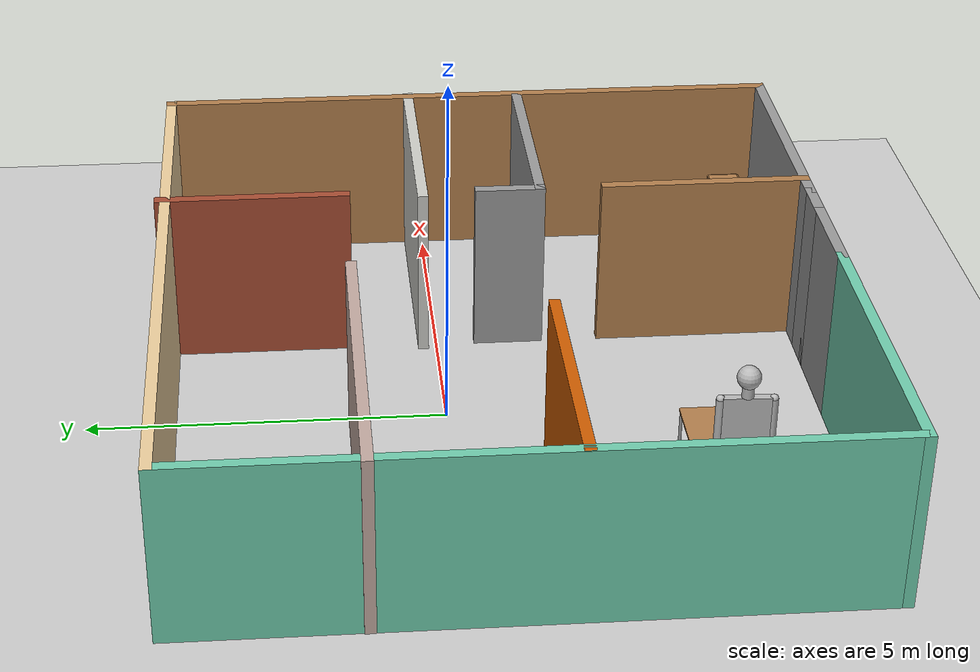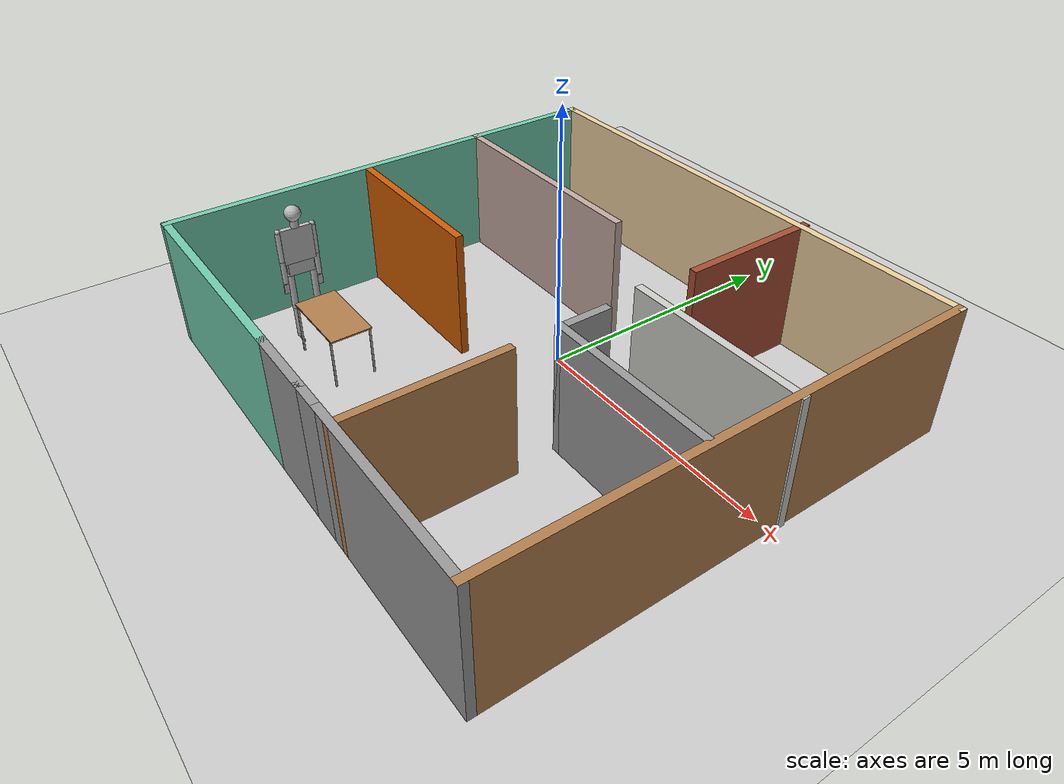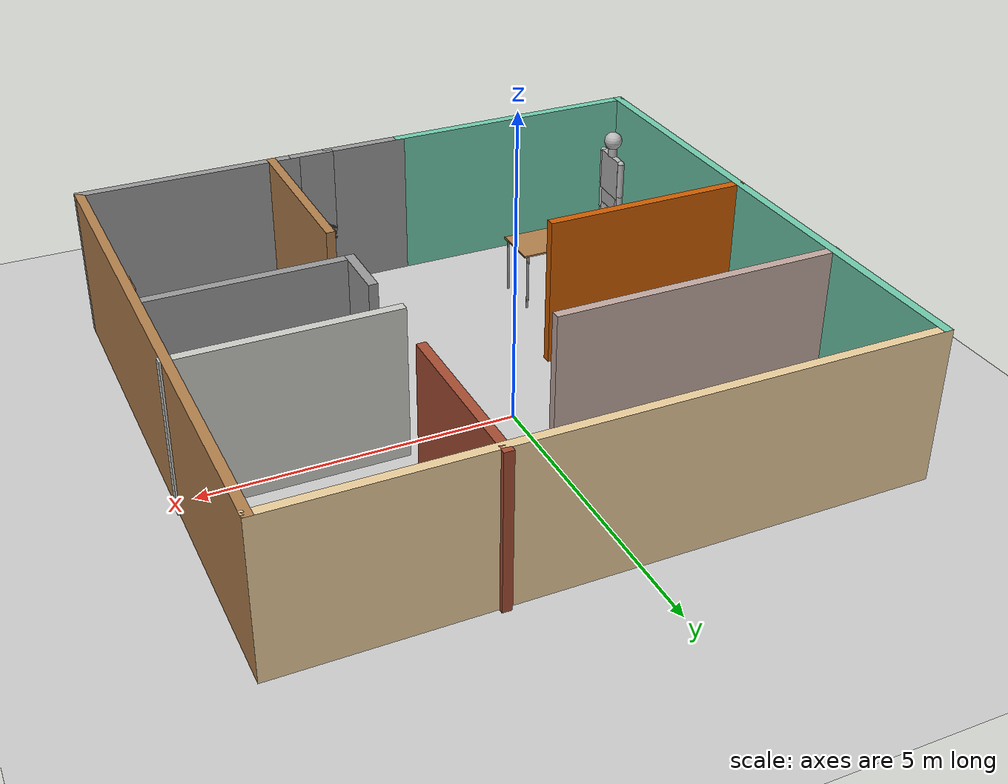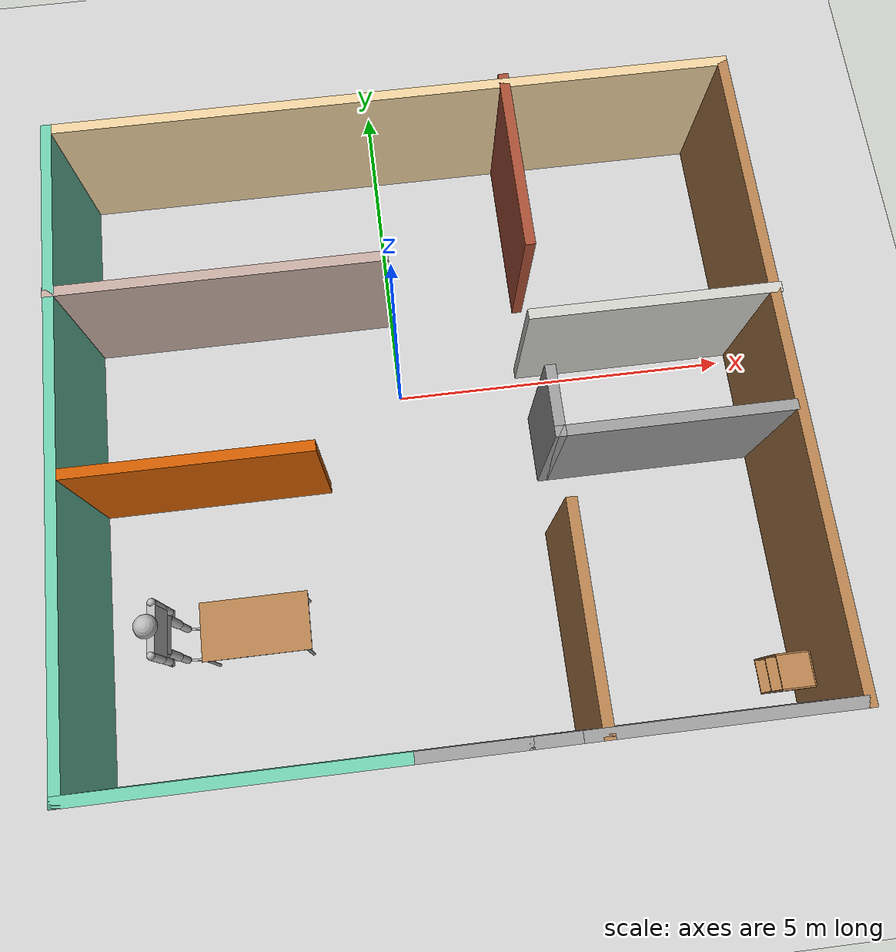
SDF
<sdf version="1.6">
 <world name="default">
  <light name="sun" type="directional">
   <pose>0 0 10 0 -0 0</pose>
   <diffuse>0.8 0.8 0.8 1</diffuse>
   <specular>0.2 0.2 0.2 1</specular>
   <attenuation>
    <range>1000</range>
    <constant>0.9</constant>
    <linear>0.01</linear>
    <quadratic>0.001</quadratic>
   </attenuation>
   <direction>-0.5 0.1 -0.9</direction>
  </light>
  <model name="ground_plane">
   <static>1</static>
   <link name="link">
    <collision name="collision">
     <geometry><plane><normal>0 0 1</normal><size>100 100</size></plane></geometry>
     <surface><friction><ode><mu>100</mu><mu2>50</mu2></ode></friction></surface>
    </collision>
    <visual name="visual">
     <cast_shadows>0</cast_shadows>
     <geometry><plane><normal>0 0 1</normal><size>100 100</size></plane></geometry>
     <material>
      <script><uri>file://media/materials/scripts/gazebo.material</uri><name>Gazebo/Grey</name></script>
     </material>
    </visual>
   </link>
  </model>
  <gravity>0 0 -9.8</gravity>
  <magnetic_field>6e-06 2.3e-05 -4.2e-05</magnetic_field>
  <atmosphere type="adiabatic"/>
  <physics name="default_physics" default="0" type="ode">
   <max_step_size>0.001</max_step_size>
   <real_time_factor>1</real_time_factor>
   <real_time_update_rate>1000</real_time_update_rate>
  </physics>
  <scene><ambient>0.4 0.4 0.4 1</ambient><background>0.7 0.7 0.7 1</background><shadows>1</shadows></scene>
  <spherical_coordinates>
   <surface_model>EARTH_WGS84</surface_model>
   <latitude_deg>0</latitude_deg>
   <longitude_deg>0</longitude_deg>
   <elevation>0</elevation>
   <heading_deg>0</heading_deg>
  </spherical_coordinates>
  <model name="world2">
   <pose>0.293367 -0.68691 0 0 -0 0</pose>
   <link name="Wall_0">
    <collision name="Wall_0_Collision">
     <geometry><box><size>4.5 0.15 2.5</size></box></geometry>
     <pose>0 0 1.25 0 -0 0</pose>
    </collision>
    <visual name="Wall_0_Visual">
     <pose>0 0 1.25 0 -0 0</pose>
     <geometry><box><size>4.5 0.15 2.5</size></box></geometry>
     <material>
      <script><uri>file://media/materials/scripts/gazebo.material</uri><name>Gazebo/Grey</name></script>
      <ambient>0.435294 0.796078 0.67451 1</ambient>
     </material>
     <meta><layer>0</layer></meta>
    </visual>
    <pose>-2.75939 -4.58853 0 0 -0 3.14159</pose>
   </link>
   <link name="Wall_1">
    <collision name="Wall_1_Collision">
     <geometry><box><size>9.25 0.15 2.5</size></box></geometry>
     <pose>0 0 1.25 0 -0 0</pose>
    </collision>
    <visual name="Wall_1_Visual">
     <pose>0 0 1.25 0 -0 0</pose>
     <geometry><box><size>9.25 0.15 2.5</size></box></geometry>
     <material>
      <script><uri>file://media/materials/scripts/gazebo.material</uri><name>Gazebo/Grey</name></script>
      <ambient>0.435294 0.796078 0.67451 1</ambient>
     </material>
     <meta><layer>0</layer></meta>
    </visual>
    <pose>-4.93439 -0.038534 0 0 -0 1.5708</pose>
   </link>
   <link name="Wall_11">
    <collision name="Wall_11_Collision">
     <geometry><box><size>2.75 0.15 2.5</size></box></geometry>
     <pose>0 0 1.25 0 -0 0</pose>
    </collision>
    <visual name="Wall_11_Visual">
     <pose>0 0 1.25 0 -0 0</pose>
     <geometry><box><size>2.75 0.15 2.5</size></box></geometry>
     <material>
      <script><uri>file://media/materials/scripts/gazebo.material</uri><name>Gazebo/Bricks</name></script>
      <ambient>1 1 1 1</ambient>
     </material>
     <meta><layer>0</layer></meta>
    </visual>
    <pose>1.70322 3.28853 0 0 -0 -1.5708</pose>
   </link>
   <link name="Wall_13">
    <collision name="Wall_13_Collision">
     <geometry><box><size>3.5 0.15 2.5</size></box></geometry>
     <pose>0 0 1.25 0 -0 0</pose>
    </collision>
    <visual name="Wall_13_Visual">
     <pose>0 0 1.25 0 -0 0</pose>
     <geometry><box><size>3.5 0.15 2.5</size></box></geometry>
     <material>
      <script><uri>file://media/materials/scripts/gazebo.material</uri><name>Gazebo/CeilingTiled</name></script>
      <ambient>0.760784 0.662745 0.627451 1</ambient>
     </material>
     <meta><layer>0</layer></meta>
    </visual>
    <pose>3.27183 0.891107 0 0 -0 0</pose>
   </link>
   <link name="Wall_15">
    <collision name="Wall_15_Collision">
     <geometry><box><size>1 0.15 2.5</size></box></geometry>
     <pose>0 0 1.25 0 -0 0</pose>
    </collision>
    <visual name="Wall_15_Visual">
     <pose>0 0 1.25 0 -0 0</pose>
     <geometry><box><size>1 0.15 2.5</size></box></geometry>
     <material>
      <script><uri>file://media/materials/scripts/gazebo.material</uri><name>Gazebo/Grey</name></script>
      <ambient>1 1 1 1</ambient>
     </material>
     <meta><layer>0</layer></meta>
    </visual>
    <pose>1.70322 -0.358499 0 0 -0 -1.5708</pose>
   </link>
   <link name="Wall_16">
    <collision name="Wall_16_Collision">
     <geometry><box><size>3.25 0.15 2.5</size></box></geometry>
     <pose>0 0 1.25 0 -0 0</pose>
    </collision>
    <visual name="Wall_16_Visual">
     <pose>0 0 1.25 0 -0 0</pose>
     <geometry><box><size>3.25 0.15 2.5</size></box></geometry>
     <material>
      <script><uri>file://media/materials/scripts/gazebo.material</uri><name>Gazebo/Grey</name></script>
      <ambient>1 1 1 1</ambient>
     </material>
     <meta><layer>0</layer></meta>
    </visual>
    <pose>3.25323 -0.783499 0 0 -0 0</pose>
   </link>
   <link name="Wall_18">
    <collision name="Wall_18_Collision">
     <geometry><box><size>3.5 0.15 2.5</size></box></geometry>
     <pose>0 0 1.25 0 -0 0</pose>
    </collision>
    <visual name="Wall_18_Visual">
     <pose>0 0 1.25 0 -0 0</pose>
     <geometry><box><size>3.5 0.15 2.5</size></box></geometry>
     <material>
      <script><uri>file://media/materials/scripts/gazebo.material</uri><name>Gazebo/Grey</name></script>
      <ambient>0.807843 0.360784 0 1</ambient>
     </material>
     <meta><layer>0</layer></meta>
    </visual>
    <pose>-3.24522 -0.598504 0 0 -0 0</pose>
   </link>
   <link name="Wall_2">
    <collision name="Wall_2_Collision">
     <geometry><box><size>10 0.15 2.5</size></box></geometry>
     <pose>0 0 1.25 0 -0 0</pose>
    </collision>
    <visual name="Wall_2_Visual">
     <pose>0 0 1.25 0 -0 0</pose>
     <geometry><box><size>10 0.15 2.5</size></box></geometry>
     <material>
      <script><uri>file://media/materials/scripts/gazebo.material</uri><name>Gazebo/Grey</name></script>
      <ambient>0.921569 0.807843 0.615686 1</ambient>
     </material>
     <meta><layer>0</layer></meta>
    </visual>
    <pose>-0.009392 4.51147 0 0 -0 0</pose>
   </link>
   <link name="Wall_20">
    <collision name="Wall_20_Collision">
     <geometry><box><size>1.45 0.15 2.5</size></box></geometry>
     <pose>0 0 1.25 0 -0 0</pose>
    </collision>
    <visual name="Wall_20_Visual">
     <pose>0 0 1.25 0 -0 0</pose>
     <geometry><box><size>1.45 0.15 2.5</size></box></geometry>
     <material>
      <script><uri>file://media/materials/scripts/gazebo.material</uri><name>Gazebo/Grey</name></script>
      <ambient>1 1 1 1</ambient>
     </material>
     <meta><layer>0</layer></meta>
    </visual>
    <pose>0.065608 -4.58853 0 0 -0 0</pose>
   </link>
   <link name="Wall_3">
    <collision name="Wall_3_Collision">
     <geometry><box><size>9.25 0.15 2.5</size></box></geometry>
     <pose>0 0 1.25 0 -0 0</pose>
    </collision>
    <visual name="Wall_3_Visual">
     <pose>0 0 1.25 0 -0 0</pose>
     <geometry><box><size>9.25 0.15 2.5</size></box></geometry>
     <material>
      <script><uri>file://media/materials/scripts/gazebo.material</uri><name>Gazebo/Wood</name></script>
      <ambient>1 1 1 1</ambient>
     </material>
     <meta><layer>0</layer></meta>
    </visual>
    <pose>4.91561 -0.038534 0 0 -0 -1.5708</pose>
   </link>
   <link name="Wall_4">
    <collision name="Wall_4_Collision">
     <geometry><box><size>3.75 0.15 2.5</size></box></geometry>
     <pose>0 0 1.25 0 -0 0</pose>
    </collision>
    <visual name="Wall_4_Visual">
     <pose>0 0 1.25 0 -0 0</pose>
     <geometry><box><size>3.75 0.15 2.5</size></box></geometry>
     <material>
      <script><uri>file://media/materials/scripts/gazebo.material</uri><name>Gazebo/Grey</name></script>
      <ambient>1 1 1 1</ambient>
     </material>
     <meta><layer>0</layer></meta>
    </visual>
    <pose>3.11561 -4.58853 0 0 -0 3.14159</pose>
   </link>
   <link name="Wall_5">
    <collision name="Wall_5_Collision">
     <geometry><box><size>0.75 0.15 2.5</size></box></geometry>
     <pose>0 0 1.25 0 -0 0</pose>
    </collision>
    <visual name="Wall_5_Visual">
     <pose>0 0 1.25 0 -0 0</pose>
     <geometry><box><size>0.75 0.15 2.5</size></box></geometry>
     <material>
      <script><uri>file://media/materials/scripts/gazebo.material</uri><name>Gazebo/Grey</name></script>
      <ambient>1 1 1 1</ambient>
     </material>
     <meta><layer>0</layer></meta>
    </visual>
    <pose>1.01561 -4.58853 0 0 -0 3.14159</pose>
   </link>
   <link name="Wall_7">
    <collision name="Wall_7_Collision">
     <geometry><box><size>3 0.15 2.5</size></box></geometry>
     <pose>0 0 1.25 0 -0 0</pose>
    </collision>
    <visual name="Wall_7_Visual">
     <pose>0 0 1.25 0 -0 0</pose>
     <geometry><box><size>3 0.15 2.5</size></box></geometry>
     <material>
      <script><uri>file://media/materials/scripts/gazebo.material</uri><name>Gazebo/Wood</name></script>
      <ambient>1 1 1 1</ambient>
     </material>
     <meta><layer>0</layer></meta>
    </visual>
    <pose>1.70322 -3.16353 0 0 -0 1.5708</pose>
   </link>
   <link name="Wall_9">
    <collision name="Wall_9_Collision">
     <geometry><box><size>4.75 0.15 2.5</size></box></geometry>
     <pose>0 0 1.25 0 -0 0</pose>
    </collision>
    <visual name="Wall_9_Visual">
     <pose>0 0 1.25 0 -0 0</pose>
     <geometry><box><size>4.75 0.15 2.5</size></box></geometry>
     <material>
      <script><uri>file://media/materials/scripts/gazebo.material</uri><name>Gazebo/Grey</name></script>
      <ambient>0.760784 0.662745 0.627451 1</ambient>
     </material>
     <meta><layer>0</layer></meta>
    </visual>
    <pose>-2.64682 1.98171 0 0 -0 0</pose>
   </link>
   <static>1</static>
  </model>
  <model name="cabinet">
   <static>1</static>
   <link name="cabinet_bottom_plate">
    <inertial>
     <pose>0 0 -1 0 -0 0</pose>
     <inertia><ixx>2.05</ixx><ixy>0</ixy><ixz>0</ixz><iyy>2.05</iyy><iyz>0</iyz><izz>2.05</izz></inertia>
     <mass>25</mass>
    </inertial>
    <collision name="cabinet_bottom_plate_geom">
     <pose>0 0 0.01 0 -0 0</pose>
     <geometry><box><size>0.45 0.45 0.02</size></box></geometry>
    </collision>
    <visual name="cabinet_bottom_plate_geom_visual">
     <pose>0 0 0.01 0 -0 0</pose>
     <geometry><box><size>0.45 0.45 0.02</size></box></geometry>
     <material>
      <script><uri>file://media/materials/scripts/gazebo.material</uri><name>Gazebo/Wood</name></script>
     </material>
    </visual>
    <collision name="cabinet_bottom_plate_geom_cabinet_back_plate">
     <pose>0.235 0 0.51 0 -0 0</pose>
     <geometry><box><size>0.02 0.45 1.02</size></box></geometry>
    </collision>
    <visual name="cabinet_bottom_plate_geom_cabinet_back_plate_visual">
     <pose>0.235 0 0.51 0 -0 0</pose>
     <geometry><box><size>0.02 0.45 1.02</size></box></geometry>
     <material>
      <script><uri>file://media/materials/scripts/gazebo.material</uri><name>Gazebo/Wood</name></script>
     </material>
    </visual>
    <collision name="cabinet_bottom_plate_geom_cabinet_left_plate">
     <pose>0 0.235 0.51 0 -0 0</pose>
     <geometry><box><size>0.45 0.02 1.02</size></box></geometry>
    </collision>
    <visual name="cabinet_bottom_plate_geom_cabinet_left_plate_visual">
     <pose>0 0.235 0.51 0 -0 0</pose>
     <geometry><box><size>0.45 0.02 1.02</size></box></geometry>
     <material>
      <script><uri>file://media/materials/scripts/gazebo.material</uri><name>Gazebo/Wood</name></script>
     </material>
    </visual>
    <collision name="cabinet_bottom_plate_geom_cabinet_middle_plate">
     <pose>0 0 0.51 0 -0 0</pose>
     <geometry><box><size>0.45 0.45 0.02</size></box></geometry>
    </collision>
    <visual name="cabinet_bottom_plate_geom_cabinet_middle_plate_visual">
     <pose>0 0 0.51 0 -0 0</pose>
     <geometry><box><size>0.45 0.45 0.02</size></box></geometry>
     <material>
      <script><uri>file://media/materials/scripts/gazebo.material</uri><name>Gazebo/Wood</name></script>
     </material>
    </visual>
    <collision name="cabinet_bottom_plate_geom_cabinet_right_plate">
     <pose>0 -0.235 0.51 0 -0 0</pose>
     <geometry><box><size>0.45 0.02 1.02</size></box></geometry>
    </collision>
    <visual name="cabinet_bottom_plate_geom_cabinet_right_plate_visual">
     <pose>0 -0.235 0.51 0 -0 0</pose>
     <geometry><box><size>0.45 0.02 1.02</size></box></geometry>
     <material>
      <script><uri>file://media/materials/scripts/gazebo.material</uri><name>Gazebo/Wood</name></script>
     </material>
    </visual>
    <collision name="cabinet_bottom_plate_geom_cabinet_top_plate">
     <pose>0 0 1.01 0 -0 0</pose>
     <geometry><box><size>0.45 0.45 0.02</size></box></geometry>
    </collision>
    <visual name="cabinet_bottom_plate_geom_cabinet_top_plate_visual">
     <pose>0 0 1.01 0 -0 0</pose>
     <geometry><box><size>0.45 0.45 0.02</size></box></geometry>
     <material>
      <script><uri>file://media/materials/scripts/gazebo.material</uri><name>Gazebo/Wood</name></script>
     </material>
    </visual>
   </link>
   <pose>4.87315 -4.77591 0 0 -0 0</pose>
  </model>
  <model name="table">
   <static>1</static>
   <link name="link">
    <collision name="surface">
     <pose>0 0 1 0 -0 0</pose>
     <geometry><box><size>1.5 0.8 0.03</size></box></geometry>
     <surface><friction><ode><mu>0.6</mu><mu2>0.6</mu2></ode></friction></surface>
    </collision>
    <visual name="visual1">
     <pose>0 0 1 0 -0 0</pose>
     <geometry><box><size>1.5 0.8 0.03</size></box></geometry>
     <material>
      <script><uri>file://media/materials/scripts/gazebo.material</uri><name>Gazebo/Wood</name></script>
     </material>
    </visual>
    <collision name="front_left_leg">
     <pose>0.68 0.38 0.5 0 -0 0</pose>
     <geometry><cylinder><radius>0.02</radius><length>1</length></cylinder></geometry>
    </collision>
    <visual name="front_left_leg">
     <pose>0.68 0.38 0.5 0 -0 0</pose>
     <geometry><cylinder><radius>0.02</radius><length>1</length></cylinder></geometry>
     <material>
      <script><uri>file://media/materials/scripts/gazebo.material</uri><name>Gazebo/Grey</name></script>
     </material>
    </visual>
    <collision name="front_right_leg">
     <pose>0.68 -0.38 0.5 0 -0 0</pose>
     <geometry><cylinder><radius>0.02</radius><length>1</length></cylinder></geometry>
    </collision>
    <visual name="front_right_leg">
     <pose>0.68 -0.38 0.5 0 -0 0</pose>
     <geometry><cylinder><radius>0.02</radius><length>1</length></cylinder></geometry>
     <material>
      <script><uri>file://media/materials/scripts/gazebo.material</uri><name>Gazebo/Grey</name></script>
     </material>
    </visual>
    <collision name="back_right_leg">
     <pose>-0.68 -0.38 0.5 0 -0 0</pose>
     <geometry><cylinder><radius>0.02</radius><length>1</length></cylinder></geometry>
    </collision>
    <visual name="back_right_leg">
     <pose>-0.68 -0.38 0.5 0 -0 0</pose>
     <geometry><cylinder><radius>0.02</radius><length>1</length></cylinder></geometry>
     <material>
      <script><uri>file://media/materials/scripts/gazebo.material</uri><name>Gazebo/Grey</name></script>
     </material>
    </visual>
    <collision name="back_left_leg">
     <pose>-0.68 0.38 0.5 0 -0 0</pose>
     <geometry><cylinder><radius>0.02</radius><length>1</length></cylinder></geometry>
    </collision>
    <visual name="back_left_leg">
     <pose>-0.68 0.38 0.5 0 -0 0</pose>
     <geometry><cylinder><radius>0.02</radius><length>1</length></cylinder></geometry>
     <material>
      <script><uri>file://media/materials/scripts/gazebo.material</uri><name>Gazebo/Grey</name></script>
     </material>
    </visual>
   </link>
   <pose>-2.35396 -3.32738 0 0 -0 0</pose>
  </model>
  <model name="ragdoll">
   <pose>-3.4659 -3.36904 1.39994 2.7e-05 0.001841 -0.045696</pose>
   <link name="hip">
    <inertial>
     <inertia><ixx>0.1</ixx><ixy>0</ixy><ixz>0</ixz><iyy>0.1</iyy><iyz>0</iyz><izz>0.1</izz></inertia>
     <mass>10</mass>
    </inertial>
    <collision name="hip_geom">
     <pose>0 0 0.125 0 -0 0</pose>
     <geometry><box><size>0.1 0.5 0.25</size></box></geometry>
     <surface>
      <friction><ode><mu>-1</mu><mu2>-1</mu2><fdir1>0 0 0</fdir1><slip1>0</slip1><slip2>0</slip2></ode></friction>
      <bounce><restitution_coefficient>0</restitution_coefficient><threshold>100000</threshold></bounce>
      <contact>
       <ode>
        <soft_cfm>0</soft_cfm>
        <soft_erp>0.2</soft_erp>
        <kp>1e+12</kp>
        <kd>1</kd>
        <max_vel>0</max_vel>
        <min_depth>0.001</min_depth>
       </ode>
      </contact>
     </surface>
    </collision>
    <visual name="hip_geom_visual">
     <pose>0 0 0.125 0 -0 0</pose>
     <geometry><box><size>0.1 0.5 0.25</size></box></geometry>
    </visual>
    <gravity>0</gravity>
   </link>
   <link name="l_thigh_pan">
    <pose>0 0.22 0 0 -0 0</pose>
    <inertial>
     <inertia><ixx>0.01</ixx><ixy>0</ixy><ixz>0</ixz><iyy>0.01</iyy><iyz>0</iyz><izz>0.01</izz></inertia>
     <mass>1</mass>
    </inertial>
    <collision name="l_thigh_pan_geom">
     <pose>0 0 -0.03 0 -0 0</pose>
     <geometry><sphere><radius>0.06</radius></sphere></geometry>
     <surface>
      <friction><ode><mu>-1</mu><mu2>-1</mu2><fdir1>0 0 0</fdir1><slip1>0</slip1><slip2>0</slip2></ode></friction>
      <bounce><restitution_coefficient>0</restitution_coefficient><threshold>100000</threshold></bounce>
      <contact>
       <ode>
        <soft_cfm>0</soft_cfm>
        <soft_erp>0.2</soft_erp>
        <kp>1e+12</kp>
        <kd>1</kd>
        <max_vel>0</max_vel>
        <min_depth>0.001</min_depth>
       </ode>
      </contact>
     </surface>
    </collision>
    <visual name="l_thigh_pan_geom_visual">
     <pose>0 0 -0.03 0 -0 0</pose>
     <geometry><sphere><radius>0.06</radius></sphere></geometry>
    </visual>
    <gravity>0</gravity>
   </link>
   <link name="l_thigh_lift">
    <pose>0 0.22 0 0 -0 0</pose>
    <inertial>
     <inertia><ixx>0.05</ixx><ixy>0</ixy><ixz>0</ixz><iyy>0.05</iyy><iyz>0</iyz><izz>0.05</izz></inertia>
     <mass>5</mass>
    </inertial>
    <collision name="l_thigh_lift_geom">
     <pose>0 0 -0.35 0 -0 0</pose>
     <geometry><cylinder><radius>0.06</radius><length>0.7</length></cylinder></geometry>
     <surface>
      <friction><ode><mu>-1</mu><mu2>-1</mu2><fdir1>0 0 0</fdir1><slip1>0</slip1><slip2>0</slip2></ode></friction>
      <bounce><restitution_coefficient>0</restitution_coefficient><threshold>100000</threshold></bounce>
      <contact>
       <ode>
        <soft_cfm>0</soft_cfm>
        <soft_erp>0.2</soft_erp>
        <kp>1e+12</kp>
        <kd>1</kd>
        <max_vel>0</max_vel>
        <min_depth>0.001</min_depth>
       </ode>
      </contact>
     </surface>
    </collision>
    <visual name="l_thigh_lift_geom_visual">
     <pose>0 0 -0.35 0 -0 0</pose>
     <geometry><cylinder><radius>0.06</radius><length>0.7</length></cylinder></geometry>
    </visual>
    <gravity>0</gravity>
   </link>
   <link name="l_calf">
    <pose>0 0.22 -0.7 0 -0 0</pose>
    <inertial>
     <inertia><ixx>0.02</ixx><ixy>0</ixy><ixz>0</ixz><iyy>0.02</iyy><iyz>0</iyz><izz>0.02</izz></inertia>
     <mass>2</mass>
    </inertial>
    <collision name="l_calf_geom">
     <pose>0 0 -0.3 0 -0 0</pose>
     <geometry><cylinder><radius>0.05</radius><length>0.6</length></cylinder></geometry>
     <surface>
      <friction><ode><mu>-1</mu><mu2>-1</mu2><fdir1>0 0 0</fdir1><slip1>0</slip1><slip2>0</slip2></ode></friction>
      <bounce><restitution_coefficient>0</restitution_coefficient><threshold>100000</threshold></bounce>
      <contact>
       <ode>
        <soft_cfm>0</soft_cfm>
        <soft_erp>0.2</soft_erp>
        <kp>1e+12</kp>
        <kd>1</kd>
        <max_vel>0</max_vel>
        <min_depth>0.001</min_depth>
       </ode>
      </contact>
     </surface>
    </collision>
    <visual name="l_calf_geom_visual">
     <pose>0 0 -0.3 0 -0 0</pose>
     <geometry><cylinder><radius>0.05</radius><length>0.6</length></cylinder></geometry>
    </visual>
    <gravity>0</gravity>
   </link>
   <link name="l_ankle">
    <pose>0 0.22 -1.325 0 -0 0</pose>
    <inertial>
     <inertia><ixx>0.01</ixx><ixy>0</ixy><ixz>0</ixz><iyy>0.01</iyy><iyz>0</iyz><izz>0.01</izz></inertia>
     <mass>1</mass>
    </inertial>
    <collision name="l_ankle_geom">
     <geometry><sphere><radius>0.05</radius></sphere></geometry>
     <surface>
      <friction><ode><mu>-1</mu><mu2>-1</mu2><fdir1>0 0 0</fdir1><slip1>0</slip1><slip2>0</slip2></ode></friction>
      <bounce><restitution_coefficient>0</restitution_coefficient><threshold>100000</threshold></bounce>
      <contact>
       <ode>
        <soft_cfm>0</soft_cfm>
        <soft_erp>0.2</soft_erp>
        <kp>1e+12</kp>
        <kd>1</kd>
        <max_vel>0</max_vel>
        <min_depth>0.001</min_depth>
       </ode>
      </contact>
     </surface>
    </collision>
    <visual name="l_ankle_geom_visual"><geometry><sphere><radius>0.05</radius></sphere></geometry></visual>
    <gravity>0</gravity>
   </link>
   <link name="l_foot">
    <pose>0 0.22 -1.35 0 -0 0</pose>
    <inertial>
     <pose>0.1 0 0 0 -0 0</pose>
     <inertia><ixx>0.01</ixx><ixy>0</ixy><ixz>0</ixz><iyy>0.01</iyy><iyz>0</iyz><izz>0.01</izz></inertia>
     <mass>1</mass>
    </inertial>
    <collision name="l_foot_geom">
     <pose>0.1 0 -0.025 0 -0 0</pose>
     <geometry><box><size>0.2 0.03 0.05</size></box></geometry>
     <surface>
      <friction><ode><mu>-1</mu><mu2>-1</mu2><fdir1>0 0 0</fdir1><slip1>0</slip1><slip2>0</slip2></ode></friction>
      <bounce><restitution_coefficient>0</restitution_coefficient><threshold>100000</threshold></bounce>
      <contact>
       <ode>
        <soft_cfm>0</soft_cfm>
        <soft_erp>0.2</soft_erp>
        <kp>1e+12</kp>
        <kd>1</kd>
        <max_vel>0</max_vel>
        <min_depth>0.001</min_depth>
       </ode>
      </contact>
     </surface>
    </collision>
    <visual name="l_foot_geom_visual">
     <pose>0.1 0 -0.025 0 -0 0</pose>
     <geometry><box><size>0.2 0.03 0.05</size></box></geometry>
    </visual>
   </link>
   <link name="r_thigh_pan">
    <pose>0 -0.22 0 0 -0 0</pose>
    <inertial>
     <inertia><ixx>0.01</ixx><ixy>0</ixy><ixz>0</ixz><iyy>0.01</iyy><iyz>0</iyz><izz>0.01</izz></inertia>
     <mass>1</mass>
    </inertial>
    <collision name="r_thigh_pan_geom">
     <pose>0 0 -0.03 0 -0 0</pose>
     <geometry><sphere><radius>0.06</radius></sphere></geometry>
     <surface>
      <friction><ode><mu>-1</mu><mu2>-1</mu2><fdir1>0 0 0</fdir1><slip1>0</slip1><slip2>0</slip2></ode></friction>
      <bounce><restitution_coefficient>0</restitution_coefficient><threshold>100000</threshold></bounce>
      <contact>
       <ode>
        <soft_cfm>0</soft_cfm>
        <soft_erp>0.2</soft_erp>
        <kp>1e+12</kp>
        <kd>1</kd>
        <max_vel>0</max_vel>
        <min_depth>0.001</min_depth>
       </ode>
      </contact>
     </surface>
    </collision>
    <visual name="r_thigh_pan_geom_visual">
     <pose>0 0 -0.03 0 -0 0</pose>
     <geometry><sphere><radius>0.06</radius></sphere></geometry>
    </visual>
    <gravity>0</gravity>
   </link>
   <link name="r_thigh_lift">
    <pose>0 -0.22 0 0 -0 0</pose>
    <inertial>
     <inertia><ixx>0.05</ixx><ixy>0</ixy><ixz>0</ixz><iyy>0.05</iyy><iyz>0</iyz><izz>0.05</izz></inertia>
     <mass>5</mass>
    </inertial>
    <collision name="r_thigh_lift_geom">
     <pose>0 0 -0.35 0 -0 0</pose>
     <geometry><cylinder><radius>0.06</radius><length>0.7</length></cylinder></geometry>
     <surface>
      <friction><ode><mu>-1</mu><mu2>-1</mu2><fdir1>0 0 0</fdir1><slip1>0</slip1><slip2>0</slip2></ode></friction>
      <bounce><restitution_coefficient>0</restitution_coefficient><threshold>100000</threshold></bounce>
      <contact>
       <ode>
        <soft_cfm>0</soft_cfm>
        <soft_erp>0.2</soft_erp>
        <kp>1e+12</kp>
        <kd>1</kd>
        <max_vel>0</max_vel>
        <min_depth>0.001</min_depth>
       </ode>
      </contact>
     </surface>
    </collision>
    <visual name="r_thigh_lift_geom_visual">
     <pose>0 0 -0.35 0 -0 0</pose>
     <geometry><cylinder><radius>0.06</radius><length>0.7</length></cylinder></geometry>
    </visual>
    <gravity>0</gravity>
   </link>
   <link name="r_calf">
    <pose>0 -0.22 -0.7 0 -0 0</pose>
    <inertial>
     <inertia><ixx>0.02</ixx><ixy>0</ixy><ixz>0</ixz><iyy>0.02</iyy><iyz>0</iyz><izz>0.02</izz></inertia>
     <mass>2</mass>
    </inertial>
    <collision name="r_calf_geom">
     <pose>0 0 -0.3 0 -0 0</pose>
     <geometry><cylinder><radius>0.05</radius><length>0.6</length></cylinder></geometry>
     <surface>
      <friction><ode><mu>-1</mu><mu2>-1</mu2><fdir1>0 0 0</fdir1><slip1>0</slip1><slip2>0</slip2></ode></friction>
      <bounce><restitution_coefficient>0</restitution_coefficient><threshold>100000</threshold></bounce>
      <contact>
       <ode>
        <soft_cfm>0</soft_cfm>
        <soft_erp>0.2</soft_erp>
        <kp>1e+12</kp>
        <kd>1</kd>
        <max_vel>0</max_vel>
        <min_depth>0.001</min_depth>
       </ode>
      </contact>
     </surface>
    </collision>
    <visual name="r_calf_geom_visual">
     <pose>0 0 -0.3 0 -0 0</pose>
     <geometry><cylinder><radius>0.05</radius><length>0.6</length></cylinder></geometry>
    </visual>
    <gravity>0</gravity>
   </link>
   <link name="r_ankle">
    <pose>0 -0.22 -1.325 0 -0 0</pose>
    <inertial>
     <inertia><ixx>0.01</ixx><ixy>0</ixy><ixz>0</ixz><iyy>0.01</iyy><iyz>0</iyz><izz>0.01</izz></inertia>
     <mass>1</mass>
    </inertial>
    <collision name="r_ankle_geom">
     <geometry><sphere><radius>0.05</radius></sphere></geometry>
     <surface>
      <friction><ode><mu>-1</mu><mu2>-1</mu2><fdir1>0 0 0</fdir1><slip1>0</slip1><slip2>0</slip2></ode></friction>
      <bounce><restitution_coefficient>0</restitution_coefficient><threshold>100000</threshold></bounce>
      <contact>
       <ode>
        <soft_cfm>0</soft_cfm>
        <soft_erp>0.2</soft_erp>
        <kp>1e+12</kp>
        <kd>1</kd>
        <max_vel>0</max_vel>
        <min_depth>0.001</min_depth>
       </ode>
      </contact>
     </surface>
    </collision>
    <visual name="r_ankle_geom_visual"><geometry><sphere><radius>0.05</radius></sphere></geometry></visual>
    <gravity>0</gravity>
   </link>
   <link name="r_foot">
    <pose>0 -0.22 -1.35 0 -0 0</pose>
    <inertial>
     <pose>0.1 0 0 0 -0 0</pose>
     <inertia><ixx>0.01</ixx><ixy>0</ixy><ixz>0</ixz><iyy>0.01</iyy><iyz>0</iyz><izz>0.01</izz></inertia>
     <mass>1</mass>
    </inertial>
    <collision name="r_foot_geom">
     <pose>0.1 0 -0.025 0 -0 0</pose>
     <geometry><box><size>0.2 0.03 0.05</size></box></geometry>
     <surface>
      <friction><ode><mu>-1</mu><mu2>-1</mu2><fdir1>0 0 0</fdir1><slip1>0</slip1><slip2>0</slip2></ode></friction>
      <bounce><restitution_coefficient>0</restitution_coefficient><threshold>100000</threshold></bounce>
      <contact>
       <ode>
        <soft_cfm>0</soft_cfm>
        <soft_erp>0.2</soft_erp>
        <kp>1e+12</kp>
        <kd>1</kd>
        <max_vel>0</max_vel>
        <min_depth>0.001</min_depth>
       </ode>
      </contact>
     </surface>
    </collision>
    <visual name="r_foot_geom_visual">
     <pose>0.1 0 -0.025 0 -0 0</pose>
     <geometry><box><size>0.2 0.03 0.05</size></box></geometry>
    </visual>
   </link>
   <link name="torso">
    <pose>0 0 0.25 0 -0 0</pose>
    <inertial>
     <inertia><ixx>0.3</ixx><ixy>0</ixy><ixz>0</ixz><iyy>0.3</iyy><iyz>0</iyz><izz>0.3</izz></inertia>
     <mass>30</mass>
    </inertial>
    <collision name="torso_geom">
     <pose>0 0 0.35 0 -0 0</pose>
     <geometry><box><size>0.1 0.6 0.7</size></box></geometry>
     <surface>
      <friction><ode><mu>-1</mu><mu2>-1</mu2><fdir1>0 0 0</fdir1><slip1>0</slip1><slip2>0</slip2></ode></friction>
      <bounce><restitution_coefficient>0</restitution_coefficient><threshold>100000</threshold></bounce>
      <contact>
       <ode>
        <soft_cfm>0</soft_cfm>
        <soft_erp>0.2</soft_erp>
        <kp>1e+12</kp>
        <kd>1</kd>
        <max_vel>0</max_vel>
        <min_depth>0.001</min_depth>
       </ode>
      </contact>
     </surface>
    </collision>
    <visual name="torso_geom_visual">
     <pose>0 0 0.35 0 -0 0</pose>
     <geometry><box><size>0.1 0.6 0.7</size></box></geometry>
    </visual>
    <gravity>0</gravity>
   </link>
   <link name="l_shoulder">
    <pose>0 0.3275 0.9225 0 -0 0</pose>
    <inertial>
     <inertia><ixx>0.01</ixx><ixy>0</ixy><ixz>0</ixz><iyy>0.01</iyy><iyz>0</iyz><izz>0.01</izz></inertia>
     <mass>1</mass>
    </inertial>
    <collision name="l_shoulder_geom">
     <geometry><sphere><radius>0.055</radius></sphere></geometry>
     <surface>
      <friction><ode><mu>-1</mu><mu2>-1</mu2><fdir1>0 0 0</fdir1><slip1>0</slip1><slip2>0</slip2></ode></friction>
      <bounce><restitution_coefficient>0</restitution_coefficient><threshold>100000</threshold></bounce>
      <contact>
       <ode>
        <soft_cfm>0</soft_cfm>
        <soft_erp>0.2</soft_erp>
        <kp>1e+12</kp>
        <kd>1</kd>
        <max_vel>0</max_vel>
        <min_depth>0.001</min_depth>
       </ode>
      </contact>
     </surface>
    </collision>
    <visual name="l_shoulder_geom_visual"><geometry><sphere><radius>0.055</radius></sphere></geometry></visual>
    <gravity>0</gravity>
   </link>
   <link name="l_upper_arm">
    <pose>0 0.3275 0.9225 0 -0 0</pose>
    <inertial>
     <inertia><ixx>0.02</ixx><ixy>0</ixy><ixz>0</ixz><iyy>0.02</iyy><iyz>0</iyz><izz>0.02</izz></inertia>
     <mass>2</mass>
    </inertial>
    <collision name="l_upper_arm_geom">
     <pose>0 0 -0.3 0 -0 0</pose>
     <geometry><cylinder><radius>0.055</radius><length>0.6</length></cylinder></geometry>
     <surface>
      <friction><ode><mu>-1</mu><mu2>-1</mu2><fdir1>0 0 0</fdir1><slip1>0</slip1><slip2>0</slip2></ode></friction>
      <bounce><restitution_coefficient>0</restitution_coefficient><threshold>100000</threshold></bounce>
      <contact>
       <ode>
        <soft_cfm>0</soft_cfm>
        <soft_erp>0.2</soft_erp>
        <kp>1e+12</kp>
        <kd>1</kd>
        <max_vel>0</max_vel>
        <min_depth>0.001</min_depth>
       </ode>
      </contact>
     </surface>
    </collision>
    <visual name="l_upper_arm_geom_visual">
     <pose>0 0 -0.3 0 -0 0</pose>
     <geometry><cylinder><radius>0.055</radius><length>0.6</length></cylinder></geometry>
    </visual>
    <gravity>0</gravity>
   </link>
   <link name="l_forearm">
    <pose>0 0.3275 0.3225 0 -0 0</pose>
    <inertial>
     <inertia><ixx>0.01</ixx><ixy>0</ixy><ixz>0</ixz><iyy>0.01</iyy><iyz>0</iyz><izz>0.01</izz></inertia>
     <mass>1</mass>
    </inertial>
    <collision name="l_forearm_geom">
     <pose>0 0 -0.225 0 -0 0</pose>
     <geometry><cylinder><radius>0.05</radius><length>0.45</length></cylinder></geometry>
     <surface>
      <friction><ode><mu>-1</mu><mu2>-1</mu2><fdir1>0 0 0</fdir1><slip1>0</slip1><slip2>0</slip2></ode></friction>
      <bounce><restitution_coefficient>0</restitution_coefficient><threshold>100000</threshold></bounce>
      <contact>
       <ode>
        <soft_cfm>0</soft_cfm>
        <soft_erp>0.2</soft_erp>
        <kp>1e+12</kp>
        <kd>1</kd>
        <max_vel>0</max_vel>
        <min_depth>0.001</min_depth>
       </ode>
      </contact>
     </surface>
    </collision>
    <visual name="l_forearm_geom_visual">
     <pose>0 0 -0.225 0 -0 0</pose>
     <geometry><cylinder><radius>0.05</radius><length>0.45</length></cylinder></geometry>
    </visual>
    <gravity>0</gravity>
   </link>
   <link name="l_wrist">
    <pose>0 0.3275 -0.1425 0 -0 0</pose>
    <inertial>
     <inertia><ixx>0.01</ixx><ixy>0</ixy><ixz>0</ixz><iyy>0.01</iyy><iyz>0</iyz><izz>0.01</izz></inertia>
     <mass>1</mass>
    </inertial>
    <collision name="l_wrist_geom">
     <geometry><sphere><radius>0.03</radius></sphere></geometry>
     <surface>
      <friction><ode><mu>-1</mu><mu2>-1</mu2><fdir1>0 0 0</fdir1><slip1>0</slip1><slip2>0</slip2></ode></friction>
      <bounce><restitution_coefficient>0</restitution_coefficient><threshold>100000</threshold></bounce>
      <contact>
       <ode>
        <soft_cfm>0</soft_cfm>
        <soft_erp>0.2</soft_erp>
        <kp>1e+12</kp>
        <kd>1</kd>
        <max_vel>0</max_vel>
        <min_depth>0.001</min_depth>
       </ode>
      </contact>
     </surface>
    </collision>
    <visual name="l_wrist_geom_visual"><geometry><sphere><radius>0.03</radius></sphere></geometry></visual>
    <gravity>0</gravity>
   </link>
   <link name="l_hand">
    <pose>0 0.3275 -0.1575 0 -0 0</pose>
    <inertial>
     <inertia><ixx>0.01</ixx><ixy>0</ixy><ixz>0</ixz><iyy>0.01</iyy><iyz>0</iyz><izz>0.01</izz></inertia>
     <mass>1</mass>
    </inertial>
    <collision name="l_hand_geom">
     <pose>0 0 -0.1 0 -0 0</pose>
     <geometry><box><size>0.03 0.1 0.2</size></box></geometry>
     <surface>
      <friction><ode><mu>-1</mu><mu2>-1</mu2><fdir1>0 0 0</fdir1><slip1>0</slip1><slip2>0</slip2></ode></friction>
      <bounce><restitution_coefficient>0</restitution_coefficient><threshold>100000</threshold></bounce>
      <contact>
       <ode>
        <soft_cfm>0</soft_cfm>
        <soft_erp>0.2</soft_erp>
        <kp>1e+12</kp>
        <kd>1</kd>
        <max_vel>0</max_vel>
        <min_depth>0.001</min_depth>
       </ode>
      </contact>
     </surface>
    </collision>
    <visual name="l_hand_geom_visual">
     <pose>0 0 -0.1 0 -0 0</pose>
     <geometry><box><size>0.03 0.1 0.2</size></box></geometry>
    </visual>
    <gravity>0</gravity>
   </link>
   <link name="neck">
    <pose>0 0 0.95 0 -0 0</pose>
    <inertial>
     <inertia><ixx>0.01</ixx><ixy>0</ixy><ixz>0</ixz><iyy>0.01</iyy><iyz>0</iyz><izz>0.01</izz></inertia>
     <mass>1</mass>
    </inertial>
    <collision name="neck_geom">
     <pose>0 0 0.1 0 -0 0</pose>
     <geometry><cylinder><radius>0.075</radius><length>0.2</length></cylinder></geometry>
     <surface>
      <friction><ode><mu>-1</mu><mu2>-1</mu2><fdir1>0 0 0</fdir1><slip1>0</slip1><slip2>0</slip2></ode></friction>
      <bounce><restitution_coefficient>0</restitution_coefficient><threshold>100000</threshold></bounce>
      <contact>
       <ode>
        <soft_cfm>0</soft_cfm>
        <soft_erp>0.2</soft_erp>
        <kp>1e+12</kp>
        <kd>1</kd>
        <max_vel>0</max_vel>
        <min_depth>0.001</min_depth>
       </ode>
      </contact>
     </surface>
    </collision>
    <visual name="neck_geom_visual">
     <pose>0 0 0.1 0 -0 0</pose>
     <geometry><cylinder><radius>0.075</radius><length>0.2</length></cylinder></geometry>
    </visual>
    <gravity>0</gravity>
   </link>
   <link name="head">
    <pose>0 0 1.225 0 -0 0</pose>
    <inertial>
     <inertia><ixx>0.1</ixx><ixy>0</ixy><ixz>0</ixz><iyy>0.1</iyy><iyz>0</iyz><izz>0.1</izz></inertia>
     <mass>10</mass>
    </inertial>
    <collision name="head_geom">
     <geometry><sphere><radius>0.15</radius></sphere></geometry>
     <surface>
      <friction><ode><mu>-1</mu><mu2>-1</mu2><fdir1>0 0 0</fdir1><slip1>0</slip1><slip2>0</slip2></ode></friction>
      <bounce><restitution_coefficient>0</restitution_coefficient><threshold>100000</threshold></bounce>
      <contact>
       <ode>
        <soft_cfm>0</soft_cfm>
        <soft_erp>0.2</soft_erp>
        <kp>1e+12</kp>
        <kd>1</kd>
        <max_vel>0</max_vel>
        <min_depth>0.001</min_depth>
       </ode>
      </contact>
     </surface>
    </collision>
    <visual name="head_geom_visual"><geometry><sphere><radius>0.15</radius></sphere></geometry></visual>
    <gravity>0</gravity>
   </link>
   <link name="r_shoulder">
    <pose>0 -0.3275 0.9225 0 -0 0</pose>
    <inertial>
     <inertia><ixx>0.01</ixx><ixy>0</ixy><ixz>0</ixz><iyy>0.01</iyy><iyz>0</iyz><izz>0.01</izz></inertia>
     <mass>1</mass>
    </inertial>
    <collision name="r_shoulder_geom">
     <geometry><sphere><radius>0.055</radius></sphere></geometry>
     <surface>
      <friction><ode><mu>-1</mu><mu2>-1</mu2><fdir1>0 0 0</fdir1><slip1>0</slip1><slip2>0</slip2></ode></friction>
      <bounce><restitution_coefficient>0</restitution_coefficient><threshold>100000</threshold></bounce>
      <contact>
       <ode>
        <soft_cfm>0</soft_cfm>
        <soft_erp>0.2</soft_erp>
        <kp>1e+12</kp>
        <kd>1</kd>
        <max_vel>0</max_vel>
        <min_depth>0.001</min_depth>
       </ode>
      </contact>
     </surface>
    </collision>
    <visual name="r_shoulder_geom_visual"><geometry><sphere><radius>0.055</radius></sphere></geometry></visual>
    <gravity>0</gravity>
   </link>
   <link name="r_upper_arm">
    <pose>0 -0.3275 0.9225 0 -0 0</pose>
    <inertial>
     <inertia><ixx>0.02</ixx><ixy>0</ixy><ixz>0</ixz><iyy>0.02</iyy><iyz>0</iyz><izz>0.02</izz></inertia>
     <mass>2</mass>
    </inertial>
    <collision name="r_upper_arm_geom">
     <pose>0 0 -0.3 0 -0 0</pose>
     <geometry><cylinder><radius>0.055</radius><length>0.6</length></cylinder></geometry>
     <surface>
      <friction><ode><mu>-1</mu><mu2>-1</mu2><fdir1>0 0 0</fdir1><slip1>0</slip1><slip2>0</slip2></ode></friction>
      <bounce><restitution_coefficient>0</restitution_coefficient><threshold>100000</threshold></bounce>
      <contact>
       <ode>
        <soft_cfm>0</soft_cfm>
        <soft_erp>0.2</soft_erp>
        <kp>1e+12</kp>
        <kd>1</kd>
        <max_vel>0</max_vel>
        <min_depth>0.001</min_depth>
       </ode>
      </contact>
     </surface>
    </collision>
    <visual name="r_upper_arm_geom_visual">
     <pose>0 0 -0.3 0 -0 0</pose>
     <geometry><cylinder><radius>0.055</radius><length>0.6</length></cylinder></geometry>
    </visual>
    <gravity>0</gravity>
   </link>
   <link name="r_forearm">
    <pose>0 -0.3275 0.3225 0 -0 0</pose>
    <inertial>
     <inertia><ixx>0.01</ixx><ixy>0</ixy><ixz>0</ixz><iyy>0.01</iyy><iyz>0</iyz><izz>0.01</izz></inertia>
     <mass>1</mass>
    </inertial>
    <collision name="r_forearm_geom">
     <pose>0 0 -0.225 0 -0 0</pose>
     <geometry><cylinder><radius>0.05</radius><length>0.45</length></cylinder></geometry>
     <surface>
      <friction><ode><mu>-1</mu><mu2>-1</mu2><fdir1>0 0 0</fdir1><slip1>0</slip1><slip2>0</slip2></ode></friction>
      <bounce><restitution_coefficient>0</restitution_coefficient><threshold>100000</threshold></bounce>
      <contact>
       <ode>
        <soft_cfm>0</soft_cfm>
        <soft_erp>0.2</soft_erp>
        <kp>1e+12</kp>
        <kd>1</kd>
        <max_vel>0</max_vel>
        <min_depth>0.001</min_depth>
       </ode>
      </contact>
     </surface>
    </collision>
    <visual name="r_forearm_geom_visual">
     <pose>0 0 -0.225 0 -0 0</pose>
     <geometry><cylinder><radius>0.05</radius><length>0.45</length></cylinder></geometry>
    </visual>
    <gravity>0</gravity>
   </link>
   <link name="r_wrist">
    <pose>0 -0.3275 -0.1425 0 -0 0</pose>
    <inertial>
     <inertia><ixx>0.01</ixx><ixy>0</ixy><ixz>0</ixz><iyy>0.01</iyy><iyz>0</iyz><izz>0.01</izz></inertia>
     <mass>1</mass>
    </inertial>
    <collision name="r_wrist_geom">
     <geometry><sphere><radius>0.03</radius></sphere></geometry>
     <surface>
      <friction><ode><mu>-1</mu><mu2>-1</mu2><fdir1>0 0 0</fdir1><slip1>0</slip1><slip2>0</slip2></ode></friction>
      <bounce><restitution_coefficient>0</restitution_coefficient><threshold>100000</threshold></bounce>
      <contact>
       <ode>
        <soft_cfm>0</soft_cfm>
        <soft_erp>0.2</soft_erp>
        <kp>1e+12</kp>
        <kd>1</kd>
        <max_vel>0</max_vel>
        <min_depth>0.001</min_depth>
       </ode>
      </contact>
     </surface>
    </collision>
    <visual name="r_wrist_geom_visual"><geometry><sphere><radius>0.03</radius></sphere></geometry></visual>
    <gravity>0</gravity>
   </link>
   <link name="r_hand">
    <pose>0 -0.3275 -0.1575 0 -0 0</pose>
    <inertial>
     <inertia><ixx>0.01</ixx><ixy>0</ixy><ixz>0</ixz><iyy>0.01</iyy><iyz>0</iyz><izz>0.01</izz></inertia>
     <mass>1</mass>
    </inertial>
    <collision name="r_hand_geom">
     <pose>0 0 -0.1 0 -0 0</pose>
     <geometry><box><size>0.03 0.1 0.2</size></box></geometry>
     <surface>
      <friction><ode><mu>-1</mu><mu2>-1</mu2><fdir1>0 0 0</fdir1><slip1>0</slip1><slip2>0</slip2></ode></friction>
      <bounce><restitution_coefficient>0</restitution_coefficient><threshold>100000</threshold></bounce>
      <contact>
       <ode>
        <soft_cfm>0</soft_cfm>
        <soft_erp>0.2</soft_erp>
        <kp>1e+12</kp>
        <kd>1</kd>
        <max_vel>0</max_vel>
        <min_depth>0.001</min_depth>
       </ode>
      </contact>
     </surface>
    </collision>
    <visual name="r_hand_geom_visual">
     <pose>0 0 -0.1 0 -0 0</pose>
     <geometry><box><size>0.03 0.1 0.2</size></box></geometry>
    </visual>
    <gravity>0</gravity>
   </link>
   <joint name="l_thigh_pan_joint" type="revolute">
    <parent>hip</parent>
    <child>l_thigh_pan</child>
    <axis>
     <dynamics>
      <damping>0</damping>
      <friction>0</friction>
      <spring_reference>0</spring_reference>
      <spring_stiffness>0</spring_stiffness>
     </dynamics>
     <limit><lower>-1.5708</lower><upper>1.5708</upper><effort>0</effort><velocity>0</velocity></limit>
     <xyz>0 0 1</xyz>
     <use_parent_model_frame>1</use_parent_model_frame>
    </axis>
   </joint>
   <joint name="l_thigh_lift_joint" type="revolute">
    <parent>l_thigh_pan</parent>
    <child>l_thigh_lift</child>
    <axis>
     <dynamics>
      <damping>0</damping>
      <friction>0</friction>
      <spring_reference>0</spring_reference>
      <spring_stiffness>0</spring_stiffness>
     </dynamics>
     <limit><lower>-1.5708</lower><upper>1.5708</upper><effort>0</effort><velocity>0</velocity></limit>
     <xyz>0 1 0</xyz>
     <use_parent_model_frame>1</use_parent_model_frame>
    </axis>
   </joint>
   <joint name="l_calf_joint" type="revolute">
    <parent>l_thigh_lift</parent>
    <child>l_calf</child>
    <axis>
     <dynamics>
      <damping>0</damping>
      <friction>0</friction>
      <spring_reference>0</spring_reference>
      <spring_stiffness>0</spring_stiffness>
     </dynamics>
     <limit><lower>-1.5708</lower><upper>1.5708</upper><effort>0</effort><velocity>0</velocity></limit>
     <xyz>0 1 0</xyz>
     <use_parent_model_frame>1</use_parent_model_frame>
    </axis>
   </joint>
   <joint name="l_ankle_joint" type="revolute">
    <parent>l_calf</parent>
    <child>l_ankle</child>
    <axis>
     <dynamics>
      <damping>0</damping>
      <friction>0</friction>
      <spring_reference>0</spring_reference>
      <spring_stiffness>0</spring_stiffness>
     </dynamics>
     <limit><lower>-1.5708</lower><upper>1.5708</upper><effort>0</effort><velocity>0</velocity></limit>
     <xyz>0 1 0</xyz>
     <use_parent_model_frame>1</use_parent_model_frame>
    </axis>
   </joint>
   <joint name="l_foot_joint" type="revolute">
    <parent>l_ankle</parent>
    <child>l_foot</child>
    <axis>
     <dynamics>
      <damping>0</damping>
      <friction>0</friction>
      <spring_reference>0</spring_reference>
      <spring_stiffness>0</spring_stiffness>
     </dynamics>
     <limit><lower>-1.5708</lower><upper>1.5708</upper><effort>0</effort><velocity>0</velocity></limit>
     <xyz>1 0 0</xyz>
     <use_parent_model_frame>1</use_parent_model_frame>
    </axis>
   </joint>
   <joint name="r_thigh_pan_joint" type="revolute">
    <parent>hip</parent>
    <child>r_thigh_pan</child>
    <axis>
     <dynamics>
      <damping>0</damping>
      <friction>0</friction>
      <spring_reference>0</spring_reference>
      <spring_stiffness>0</spring_stiffness>
     </dynamics>
     <limit><lower>-1.5708</lower><upper>1.5708</upper><effort>0</effort><velocity>0</velocity></limit>
     <xyz>0 0 1</xyz>
     <use_parent_model_frame>1</use_parent_model_frame>
    </axis>
   </joint>
   <joint name="r_thigh_lift_joint" type="revolute">
    <parent>r_thigh_pan</parent>
    <child>r_thigh_lift</child>
    <axis>
     <dynamics>
      <damping>0</damping>
      <friction>0</friction>
      <spring_reference>0</spring_reference>
      <spring_stiffness>0</spring_stiffness>
     </dynamics>
     <limit><lower>-1.5708</lower><upper>1.5708</upper><effort>0</effort><velocity>0</velocity></limit>
     <xyz>0 1 0</xyz>
     <use_parent_model_frame>1</use_parent_model_frame>
    </axis>
   </joint>
   <joint name="r_calf_joint" type="revolute">
    <parent>r_thigh_lift</parent>
    <child>r_calf</child>
    <axis>
     <dynamics>
      <damping>0</damping>
      <friction>0</friction>
      <spring_reference>0</spring_reference>
      <spring_stiffness>0</spring_stiffness>
     </dynamics>
     <limit><lower>-1.5708</lower><upper>1.5708</upper><effort>0</effort><velocity>0</velocity></limit>
     <xyz>0 1 0</xyz>
     <use_parent_model_frame>1</use_parent_model_frame>
    </axis>
   </joint>
   <joint name="r_ankle_joint" type="revolute">
    <parent>r_calf</parent>
    <child>r_ankle</child>
    <axis>
     <dynamics>
      <damping>0</damping>
      <friction>0</friction>
      <spring_reference>0</spring_reference>
      <spring_stiffness>0</spring_stiffness>
     </dynamics>
     <limit><lower>-1.5708</lower><upper>1.5708</upper><effort>0</effort><velocity>0</velocity></limit>
     <xyz>0 1 0</xyz>
     <use_parent_model_frame>1</use_parent_model_frame>
    </axis>
   </joint>
   <joint name="r_foot_joint" type="revolute">
    <parent>r_ankle</parent>
    <child>r_foot</child>
    <axis>
     <dynamics>
      <damping>0</damping>
      <friction>0</friction>
      <spring_reference>0</spring_reference>
      <spring_stiffness>0</spring_stiffness>
     </dynamics>
     <limit><lower>-1.5708</lower><upper>1.5708</upper><effort>0</effort><velocity>0</velocity></limit>
     <xyz>1 0 0</xyz>
     <use_parent_model_frame>1</use_parent_model_frame>
    </axis>
   </joint>
   <joint name="torso_joint" type="revolute">
    <parent>hip</parent>
    <child>torso</child>
    <axis>
     <dynamics>
      <damping>0</damping>
      <friction>0</friction>
      <spring_reference>0</spring_reference>
      <spring_stiffness>0</spring_stiffness>
     </dynamics>
     <limit><lower>-1.5708</lower><upper>1.5708</upper><effort>0</effort><velocity>0</velocity></limit>
     <xyz>0 1 0</xyz>
     <use_parent_model_frame>1</use_parent_model_frame>
    </axis>
   </joint>
   <joint name="l_shoulder_joint" type="revolute">
    <parent>torso</parent>
    <child>l_shoulder</child>
    <axis>
     <dynamics>
      <damping>0</damping>
      <friction>0</friction>
      <spring_reference>0</spring_reference>
      <spring_stiffness>0</spring_stiffness>
     </dynamics>
     <limit><lower>-1.5708</lower><upper>1.5708</upper><effort>0</effort><velocity>0</velocity></limit>
     <xyz>1 0 0</xyz>
     <use_parent_model_frame>1</use_parent_model_frame>
    </axis>
   </joint>
   <joint name="l_upper_arm_joint" type="revolute">
    <parent>l_shoulder</parent>
    <child>l_upper_arm</child>
    <axis>
     <dynamics>
      <damping>0</damping>
      <friction>0</friction>
      <spring_reference>0</spring_reference>
      <spring_stiffness>0</spring_stiffness>
     </dynamics>
     <limit><lower>-1.5708</lower><upper>1.5708</upper><effort>0</effort><velocity>0</velocity></limit>
     <xyz>0 1 0</xyz>
     <use_parent_model_frame>1</use_parent_model_frame>
    </axis>
   </joint>
   <joint name="l_forearm_joint" type="revolute">
    <parent>l_upper_arm</parent>
    <child>l_forearm</child>
    <axis>
     <dynamics>
      <damping>0</damping>
      <friction>0</friction>
      <spring_reference>0</spring_reference>
      <spring_stiffness>0</spring_stiffness>
     </dynamics>
     <limit><lower>-1.5708</lower><upper>1.5708</upper><effort>0</effort><velocity>0</velocity></limit>
     <xyz>0 1 0</xyz>
     <use_parent_model_frame>1</use_parent_model_frame>
    </axis>
   </joint>
   <joint name="l_wrist_joint" type="revolute">
    <parent>l_forearm</parent>
    <child>l_wrist</child>
    <axis>
     <dynamics>
      <damping>0</damping>
      <friction>0</friction>
      <spring_reference>0</spring_reference>
      <spring_stiffness>0</spring_stiffness>
     </dynamics>
     <limit><lower>-1.5708</lower><upper>1.5708</upper><effort>0</effort><velocity>0</velocity></limit>
     <xyz>0 1 0</xyz>
     <use_parent_model_frame>1</use_parent_model_frame>
    </axis>
   </joint>
   <joint name="l_hand_joint" type="revolute">
    <parent>l_wrist</parent>
    <child>l_hand</child>
    <axis>
     <dynamics>
      <damping>0</damping>
      <friction>0</friction>
      <spring_reference>0</spring_reference>
      <spring_stiffness>0</spring_stiffness>
     </dynamics>
     <limit><lower>-1.5708</lower><upper>1.5708</upper><effort>0</effort><velocity>0</velocity></limit>
     <xyz>0 1 0</xyz>
     <use_parent_model_frame>1</use_parent_model_frame>
    </axis>
   </joint>
   <joint name="neck_joint" type="revolute">
    <parent>torso</parent>
    <child>neck</child>
    <axis>
     <dynamics>
      <damping>0</damping>
      <friction>0</friction>
      <spring_reference>0</spring_reference>
      <spring_stiffness>0</spring_stiffness>
     </dynamics>
     <limit><lower>-1.5708</lower><upper>1.5708</upper><effort>0</effort><velocity>0</velocity></limit>
     <xyz>0 0 1</xyz>
     <use_parent_model_frame>1</use_parent_model_frame>
    </axis>
   </joint>
   <joint name="head_joint" type="revolute">
    <parent>neck</parent>
    <child>head</child>
    <axis>
     <dynamics>
      <damping>0</damping>
      <friction>0</friction>
      <spring_reference>0</spring_reference>
      <spring_stiffness>0</spring_stiffness>
     </dynamics>
     <limit><lower>-1.5708</lower><upper>1.5708</upper><effort>0</effort><velocity>0</velocity></limit>
     <xyz>0 1 0</xyz>
     <use_parent_model_frame>1</use_parent_model_frame>
    </axis>
   </joint>
   <joint name="r_shoulder_joint" type="revolute">
    <parent>torso</parent>
    <child>r_shoulder</child>
    <axis>
     <dynamics>
      <damping>0</damping>
      <friction>0</friction>
      <spring_reference>0</spring_reference>
      <spring_stiffness>0</spring_stiffness>
     </dynamics>
     <limit><lower>-1.5708</lower><upper>1.5708</upper><effort>0</effort><velocity>0</velocity></limit>
     <xyz>1 0 0</xyz>
     <use_parent_model_frame>1</use_parent_model_frame>
    </axis>
   </joint>
   <joint name="r_upper_arm_joint" type="revolute">
    <parent>r_shoulder</parent>
    <child>r_upper_arm</child>
    <axis>
     <dynamics>
      <damping>0</damping>
      <friction>0</friction>
      <spring_reference>0</spring_reference>
      <spring_stiffness>0</spring_stiffness>
     </dynamics>
     <limit><lower>-1.5708</lower><upper>1.5708</upper><effort>0</effort><velocity>0</velocity></limit>
     <xyz>0 1 0</xyz>
     <use_parent_model_frame>1</use_parent_model_frame>
    </axis>
   </joint>
   <joint name="r_forearm_joint" type="revolute">
    <parent>r_upper_arm</parent>
    <child>r_forearm</child>
    <axis>
     <dynamics>
      <damping>0</damping>
      <friction>0</friction>
      <spring_reference>0</spring_reference>
      <spring_stiffness>0</spring_stiffness>
     </dynamics>
     <limit><lower>-1.5708</lower><upper>1.5708</upper><effort>0</effort><velocity>0</velocity></limit>
     <xyz>0 1 0</xyz>
     <use_parent_model_frame>1</use_parent_model_frame>
    </axis>
   </joint>
   <joint name="r_wrist_joint" type="revolute">
    <parent>r_forearm</parent>
    <child>r_wrist</child>
    <axis>
     <dynamics>
      <damping>0</damping>
      <friction>0</friction>
      <spring_reference>0</spring_reference>
      <spring_stiffness>0</spring_stiffness>
     </dynamics>
     <limit><lower>-1.5708</lower><upper>1.5708</upper><effort>0</effort><velocity>0</velocity></limit>
     <xyz>0 1 0</xyz>
     <use_parent_model_frame>1</use_parent_model_frame>
    </axis>
   </joint>
   <joint name="r_hand_joint" type="revolute">
    <parent>r_wrist</parent>
    <child>r_hand</child>
    <axis>
     <dynamics>
      <damping>0</damping>
      <friction>0</friction>
      <spring_reference>0</spring_reference>
      <spring_stiffness>0</spring_stiffness>
     </dynamics>
     <limit><lower>-1.5708</lower><upper>1.5708</upper><effort>0</effort><velocity>0</velocity></limit>
     <xyz>0 1 0</xyz>
     <use_parent_model_frame>1</use_parent_model_frame>
    </axis>
   </joint>
   <static>0</static>
  </model>
 </world>
</sdf>
